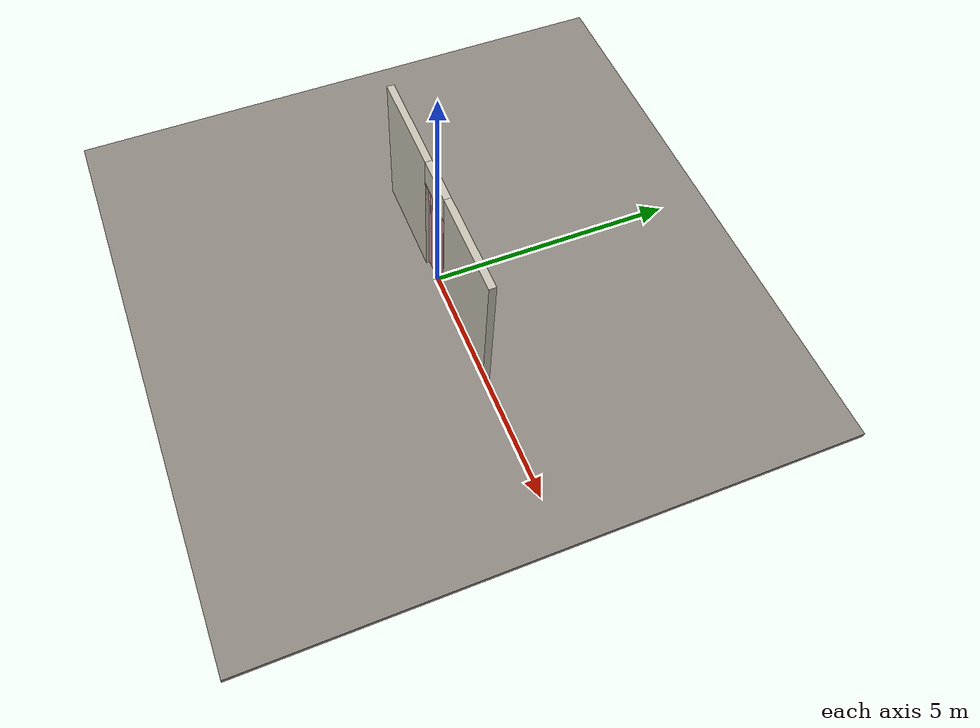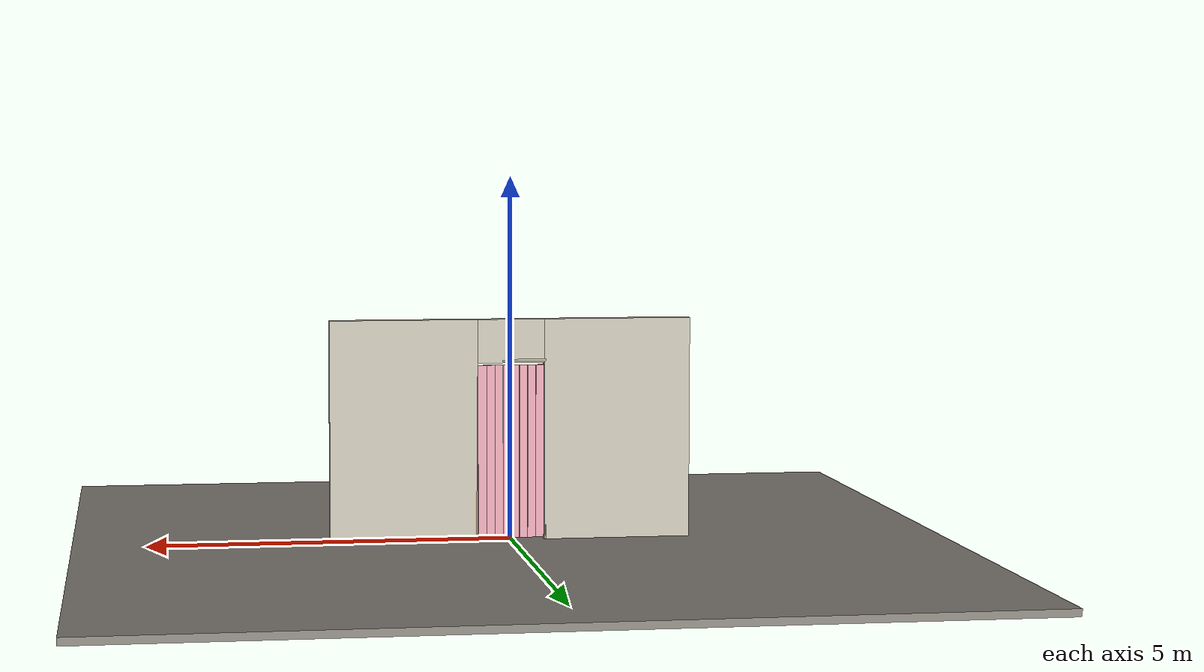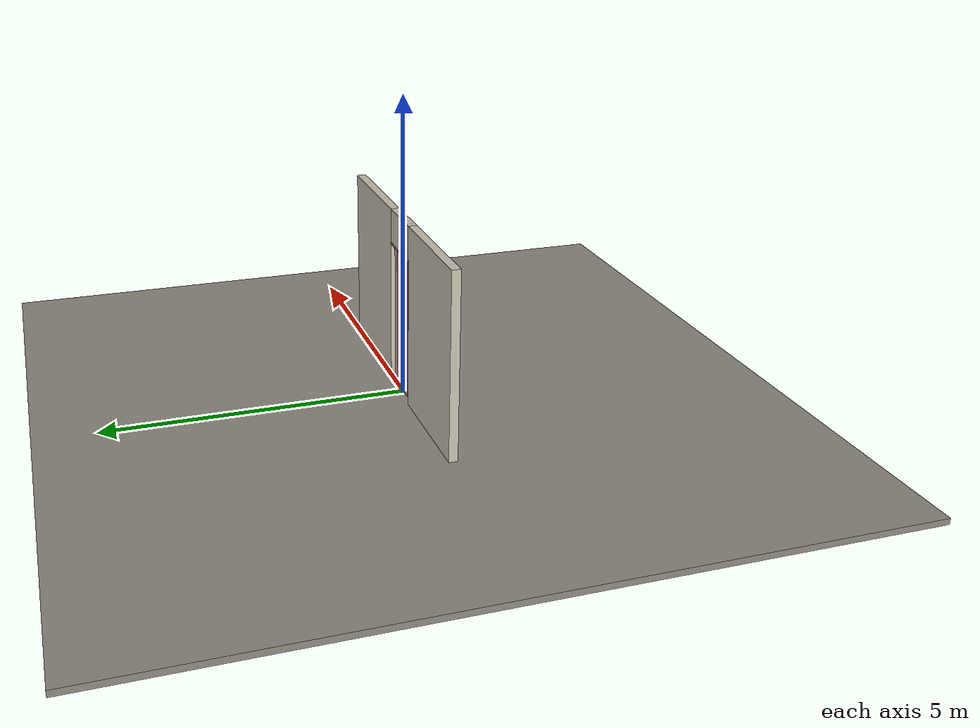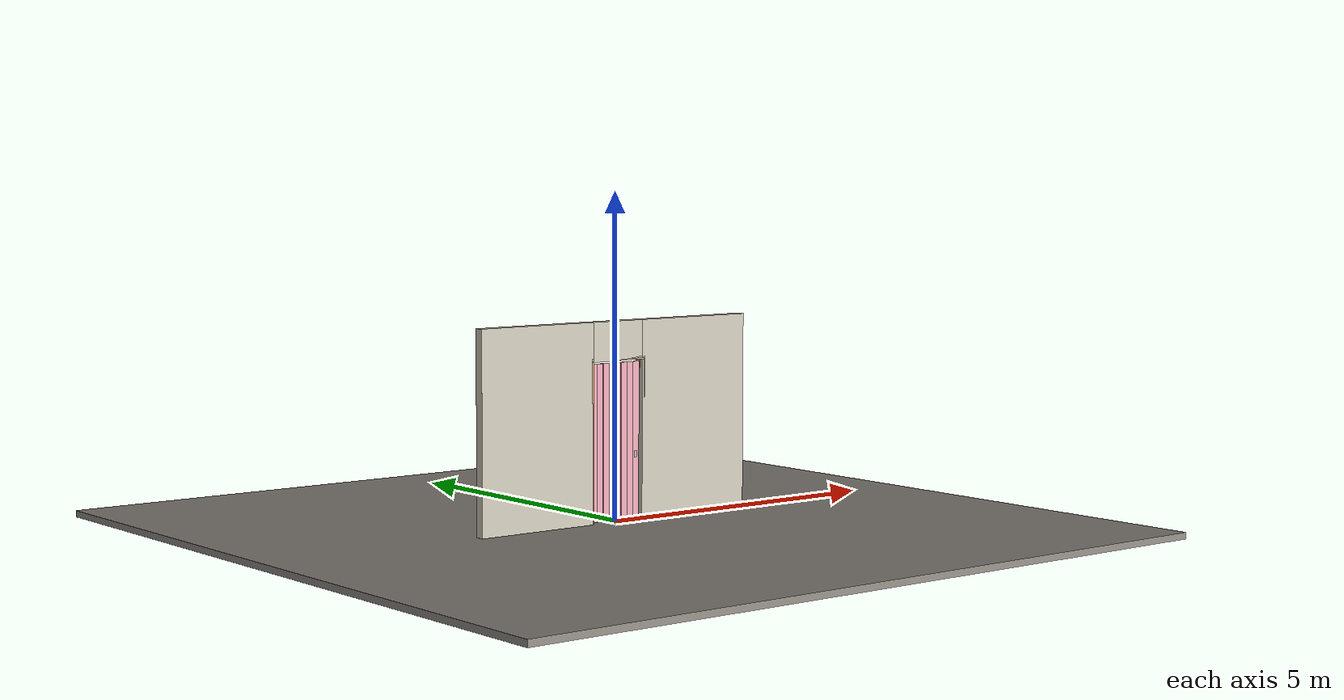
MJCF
<?xml version="1.0" ?>
<mujoco model="db0177_accordion_minimal">
  <compiler angle="radian" meshdir="../../hardware" texturedir="../../textures" autolimits="true" inertiafromgeom="false"/>
  <option timestep="0.002" integrator="implicitfast" cone="elliptic" impratio="10" noslip_iterations="3">
    <flag multiccd="enable"/>
  </option>
  <size memory="16M"/>
  <default>
    <geom condim="4" solref="0.005 1" solimp="0.95 0.99 0.001"/>
    <joint solreflimit="0.005 1" solimplimit="0.95 0.99 0.001"/>
    <tendon solreflimit="0.005 1"/>
    <equality solref="0.002 1"/>
  </default>
  <visual>
    <headlight ambient="0.4 0.4 0.4" diffuse="0.7 0.7 0.7" specular="0.2 0.2 0.2"/>
    <quality shadowsize="4096"/>
    <map znear="0.01" zfar="60"/>
  </visual>
  <asset>
    <material name="mat_floor" rgba="0.55 0.53 0.5 1" specular="0.2" shininess="0.15" reflectance="0"/>
    <material name="mat_wall" rgba="0.78 0.76 0.7 1" specular="0.2" shininess="0.1" reflectance="0"/>
    <material name="mat_frame" rgba="0.82 0.7 0.5 1" specular="0.2" shininess="0.45" reflectance="0"/>
    <material name="mat_track" rgba="0.8 0.81 0.83 1" specular="0.8" shininess="0.6" reflectance="0.4"/>
    <material name="mat_hinge" rgba="0.65 0.66 0.68 1" specular="0.74" shininess="0.5" reflectance="0.36"/>
    <material name="mat_panel_0_0" rgba="0.9 0.65 0.7 1" specular="0.2" shininess="0.44" reflectance="0"/>
    <material name="mat_panel_0_1" rgba="0.9 0.65 0.7 1" specular="0.2" shininess="0.44" reflectance="0"/>
    <material name="mat_panel_0_2" rgba="0.9 0.65 0.7 1" specular="0.2" shininess="0.44" reflectance="0"/>
    <material name="mat_panel_0_3" rgba="0.9 0.65 0.7 1" specular="0.2" shininess="0.44" reflectance="0"/>
    <material name="mat_panel_0_4" rgba="0.9 0.65 0.7 1" specular="0.2" shininess="0.44" reflectance="0"/>
    <material name="mat_panel_0_5" rgba="0.9 0.65 0.7 1" specular="0.2" shininess="0.44" reflectance="0"/>
    <material name="mat_panel_0_6" rgba="0.9 0.65 0.7 1" specular="0.2" shininess="0.44" reflectance="0"/>
    <material name="mat_panel_0_7" rgba="0.9 0.65 0.7 1" specular="0.2" shininess="0.44" reflectance="0"/>
    <material name="mat_op_nickel_satin" rgba="0.72 0.7 0.66 1" specular="0.8" shininess="0.65" reflectance="0.4"/>
    <texture name="skybox" type="skybox" builtin="gradient" rgb1="0.6 0.7 0.85" rgb2="0.9 0.92 0.95" width="256" height="256"/>
  </asset>
  <worldbody>
    <light name="sun" pos="1.5 -2.5 4" dir="-0.3 0.5 -0.8" directional="true" diffuse="0.8 0.8 0.8" specular="0.3 0.3 0.3" castshadow="true"/>
    <light name="fill" pos="-1.5 2.5 3" dir="0.3 -0.5 -0.7" directional="true" diffuse="0.35 0.35 0.4" castshadow="false"/>
    <camera name="robot_view" pos="0 -2.926563 2.046937" xyaxes="1 0 0 0 0.26963 0.962964" fovy="52"/>
    <camera name="far_view" pos="0 2.926563 2.046937" xyaxes="-1 0 0 0 -0.26963 0.962964" fovy="52"/>
    <camera name="iso" pos="2.224187 -2.458313 2.515188" xyaxes="0.741536 0.670913 0 -0.242917 0.268487 0.932151" fovy="46"/>
    <camera name="detail_handle" pos="0.57167 -0.809 1.28" xyaxes="0.97561 0.219512 0 -0.070934 0.315262 0.94635" fovy="38"/>
    <geom name="floor" type="box" size="6 6 0.05" pos="0 0 -0.05" material="mat_floor" group="0" contype="1" conaffinity="1" friction="0.8 0.005 0.0001" density="2400"/>
    <geom name="wall_left" type="box" size="1.0175 0.0725 1.5275" pos="-1.4825 0 1.5275" material="mat_wall" group="0" contype="1" conaffinity="1" friction="0.6 0.005 0.0001" density="800"/>
    <geom name="wall_right" type="box" size="1.0175 0.0725 1.5275" pos="1.4825 0 1.5275" material="mat_wall" group="0" contype="1" conaffinity="1" friction="0.6 0.005 0.0001" density="800"/>
    <geom name="wall_header" type="box" size="0.465 0.0725 0.3" pos="0 0 2.755" material="mat_wall" group="0" contype="1" conaffinity="1" friction="0.6 0.005 0.0001" density="800"/>
    <geom name="jamb_hinge" type="box" size="0.0095 0.0725 1.2275" pos="-0.4745 0 1.2275" material="mat_frame" group="0" contype="1" conaffinity="1" friction="0.6 0.005 0.0001" density="400"/>
    <geom name="jamb_strike" type="box" size="0.0095 0.0725 1.2275" pos="0.4745 0 1.2275" material="mat_frame" group="0" contype="1" conaffinity="1" friction="0.6 0.005 0.0001" density="400"/>
    <geom name="stud_strike" type="box" size="0.015 0.0725 1.2275" pos="0.499 0 1.2275" material="mat_wall" group="0" contype="1" conaffinity="1" friction="0.6 0.005 0.0001" density="500"/>
    <geom name="jamb_head" type="box" size="0.499 0.0725 0.0095" pos="0.015 0 2.4645" material="mat_frame" group="0" contype="1" conaffinity="1" friction="0.6 0.005 0.0001" density="400"/>
    <geom name="head_stud" type="box" size="0.499 0.0725 0.015" pos="0.015 0 2.489" material="mat_wall" group="0" contype="1" conaffinity="1" friction="0.6 0.005 0.0001" density="500"/>
    <site name="approach_point" pos="0 -1.5 0" quat="1 0 0 0" size="0.05" rgba="0.2 0.9 0.2 0.5" group="4"/>
    <site name="goal_point" pos="0 1.5 0" quat="1 0 0 0" size="0.05" rgba="0.2 0.9 0.2 0.5" group="4"/>
    <site name="door_plane_center" pos="0 0 1.2275" quat="1 0 0 0" size="0.02" rgba="0.2 0.9 0.2 0.5" group="4"/>
    <body name="panel_0_0" pos="-0.465 0 0">
      <inertial pos="0.0585 0 1.22" mass="4.422093" quat="-0.5 0.5 0.5 0.5" diaginertia="0.004338442 2.1227242 2.126823849"/>
      <joint name="panel_0_0_hinge" type="hinge" axis="0 0 -1" pos="0.035 0 0" limited="true" range="0 1.48353" damping="0.975088" frictionloss="8.928056" armature="0.02"/>
      <geom name="panel_0_0_slab" type="box" size="0.0535 0.009 1.2" pos="0.0585 0 1.22" material="mat_panel_0_0" group="0" contype="1" conaffinity="1" friction="0.4 0.005 0.0001" density="1"/>
      <body name="panel_0_1" pos="0.114 0 0">
        <inertial pos="0.057 0 1.22" mass="4.686644" quat="-0.5 0.5 0.5 0.5" diaginertia="0.004852239 2.249715753 2.254314913"/>
        <joint name="panel_0_1_hinge" type="hinge" axis="0 0 -1" pos="0 0.009 0" limited="true" range="-3.141593 0" damping="0.2" frictionloss="0.1" armature="0.005"/>
        <geom name="panel_0_1_slab" type="box" size="0.055 0.009 1.2" pos="0.057 0 1.22" material="mat_panel_0_1" group="0" contype="1" conaffinity="1" friction="0.4 0.005 0.0001" density="1"/>
        <body name="panel_0_2" pos="0.114 0 0">
          <inertial pos="0.057 0 1.22" mass="4.686644" quat="-0.5 0.5 0.5 0.5" diaginertia="0.004852239 2.249715753 2.254314913"/>
          <joint name="panel_0_2_hinge" type="hinge" axis="0 0 -1" pos="0 -0.009 0" limited="true" range="0 3.141593" damping="0.2" frictionloss="0.1" armature="0.005"/>
          <geom name="panel_0_2_slab" type="box" size="0.055 0.009 1.2" pos="0.057 0 1.22" material="mat_panel_0_2" group="0" contype="1" conaffinity="1" friction="0.4 0.005 0.0001" density="1"/>
          <body name="panel_0_3" pos="0.114 0 0">
            <inertial pos="0.057 0 1.22" mass="4.686644" quat="-0.5 0.5 0.5 0.5" diaginertia="0.004852239 2.249715753 2.254314913"/>
            <joint name="panel_0_3_hinge" type="hinge" axis="0 0 -1" pos="0 0.009 0" limited="true" range="-3.141593 0" damping="0.2" frictionloss="0.1" armature="0.005"/>
            <geom name="panel_0_3_slab" type="box" size="0.055 0.009 1.2" pos="0.057 0 1.22" material="mat_panel_0_3" group="0" contype="1" conaffinity="1" friction="0.4 0.005 0.0001" density="1"/>
            <body name="panel_0_4" pos="0.114 0 0">
              <inertial pos="0.057 0 1.22" mass="4.686644" quat="-0.5 0.5 0.5 0.5" diaginertia="0.004852239 2.249715753 2.254314913"/>
              <joint name="panel_0_4_hinge" type="hinge" axis="0 0 -1" pos="0 -0.009 0" limited="true" range="0 3.141593" damping="0.2" frictionloss="0.1" armature="0.005"/>
              <geom name="panel_0_4_slab" type="box" size="0.055 0.009 1.2" pos="0.057 0 1.22" material="mat_panel_0_4" group="0" contype="1" conaffinity="1" friction="0.4 0.005 0.0001" density="1"/>
              <body name="panel_0_5" pos="0.114 0 0">
                <inertial pos="0.057 0 1.22" mass="4.686644" quat="-0.5 0.5 0.5 0.5" diaginertia="0.004852239 2.249715753 2.254314913"/>
                <joint name="panel_0_5_hinge" type="hinge" axis="0 0 -1" pos="0 0.009 0" limited="true" range="-3.141593 0" damping="0.2" frictionloss="0.1" armature="0.005"/>
                <geom name="panel_0_5_slab" type="box" size="0.055 0.009 1.2" pos="0.057 0 1.22" material="mat_panel_0_5" group="0" contype="1" conaffinity="1" friction="0.4 0.005 0.0001" density="1"/>
                <body name="panel_0_6" pos="0.114 0 0">
                  <inertial pos="0.057 0 1.22" mass="4.686644" quat="-0.5 0.5 0.5 0.5" diaginertia="0.004852239 2.249715753 2.254314913"/>
                  <joint name="panel_0_6_hinge" type="hinge" axis="0 0 -1" pos="0 -0.009 0" limited="true" range="0 3.141593" damping="0.2" frictionloss="0.1" armature="0.005"/>
                  <geom name="panel_0_6_slab" type="box" size="0.055 0.009 1.2" pos="0.057 0 1.22" material="mat_panel_0_6" group="0" contype="1" conaffinity="1" friction="0.4 0.005 0.0001" density="1"/>
                  <body name="panel_0_7" pos="0.114 0 0">
                    <inertial pos="0.059506 -0.004731 1.11044" mass="4.966841" quat="0.501894 0.497917 0.501048 -0.499131" diaginertia="0.003521111 1.259148385 1.262321238"/>
                    <joint name="panel_0_7_hinge" type="hinge" axis="0 0 -1" pos="0 0.009 0" limited="true" range="-3.141593 0" damping="0.2" frictionloss="0.1" armature="0.005"/>
                    <geom name="panel_0_7_slab" type="box" size="0.058335 0.009 1.2" pos="0.060335 0 1.22" material="mat_panel_0_7" group="0" contype="1" conaffinity="1" friction="0.4 0.005 0.0001" density="1"/>
                    <geom name="panel_0_7_pull_n" type="box" size="0.025 0.0005 0.05" pos="0.05867 -0.0095 1" material="mat_op_nickel_satin" group="1" contype="0" conaffinity="0" density="1000"/>
                    <site name="panel_0_7_pull_grip_n" pos="0.05867 -0.009 1" quat="1 0 0 0" size="0.012" rgba="0.2 0.9 0.2 0.5" group="4"/>
                  </body>
                </body>
              </body>
            </body>
          </body>
        </body>
      </body>
    </body>
  </worldbody>
  <equality>
    <joint name="panel_0_1_couple" joint1="panel_0_1_hinge" joint2="panel_0_0_hinge" polycoef="0 -2 0 0 0" active="true"/>
    <joint name="panel_0_2_couple" joint1="panel_0_2_hinge" joint2="panel_0_0_hinge" polycoef="0 2 0 0 0" active="true"/>
    <joint name="panel_0_3_couple" joint1="panel_0_3_hinge" joint2="panel_0_0_hinge" polycoef="0 -2 0 0 0" active="true"/>
    <joint name="panel_0_4_couple" joint1="panel_0_4_hinge" joint2="panel_0_0_hinge" polycoef="0 2 0 0 0" active="true"/>
    <joint name="panel_0_5_couple" joint1="panel_0_5_hinge" joint2="panel_0_0_hinge" polycoef="0 -2 0 0 0" active="true"/>
    <joint name="panel_0_6_couple" joint1="panel_0_6_hinge" joint2="panel_0_0_hinge" polycoef="0 2 0 0 0" active="true"/>
    <joint name="panel_0_7_couple" joint1="panel_0_7_hinge" joint2="panel_0_0_hinge" polycoef="0 -2 0 0 0" active="true"/>
  </equality>
  <sensor>
    <jointpos name="panel_0_0_hinge_pos" joint="panel_0_0_hinge"/>
    <jointvel name="panel_0_0_hinge_vel" joint="panel_0_0_hinge"/>
    <jointpos name="panel_0_1_hinge_pos" joint="panel_0_1_hinge"/>
    <jointvel name="panel_0_1_hinge_vel" joint="panel_0_1_hinge"/>
    <jointpos name="panel_0_2_hinge_pos" joint="panel_0_2_hinge"/>
    <jointvel name="panel_0_2_hinge_vel" joint="panel_0_2_hinge"/>
    <jointpos name="panel_0_3_hinge_pos" joint="panel_0_3_hinge"/>
    <jointvel name="panel_0_3_hinge_vel" joint="panel_0_3_hinge"/>
    <jointpos name="panel_0_4_hinge_pos" joint="panel_0_4_hinge"/>
    <jointvel name="panel_0_4_hinge_vel" joint="panel_0_4_hinge"/>
    <jointpos name="panel_0_5_hinge_pos" joint="panel_0_5_hinge"/>
    <jointvel name="panel_0_5_hinge_vel" joint="panel_0_5_hinge"/>
    <jointpos name="panel_0_6_hinge_pos" joint="panel_0_6_hinge"/>
    <jointvel name="panel_0_6_hinge_vel" joint="panel_0_6_hinge"/>
    <jointpos name="panel_0_7_hinge_pos" joint="panel_0_7_hinge"/>
    <jointvel name="panel_0_7_hinge_vel" joint="panel_0_7_hinge"/>
  </sensor>
</mujoco>
